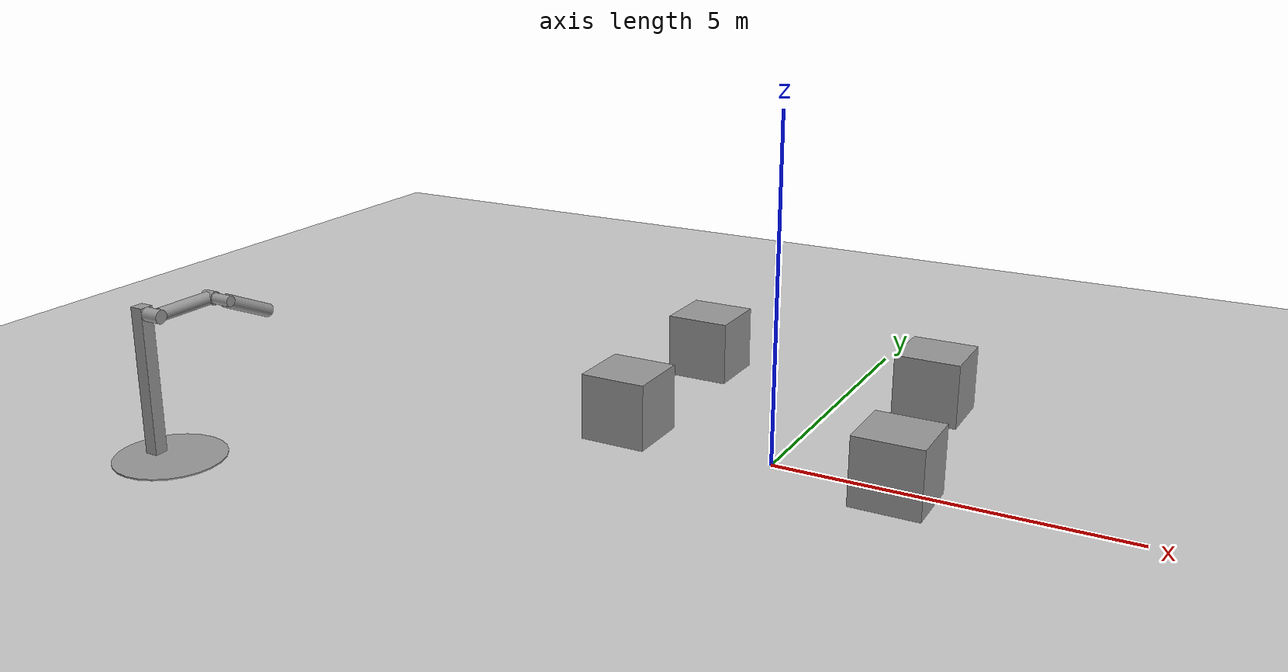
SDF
<sdf version="1.6">
 <world name="default">
  <light name="sun" type="directional">
   <pose>0 0 10 0 -0 0</pose>
   <diffuse>0.8 0.8 0.8 1</diffuse>
   <specular>0.2 0.2 0.2 1</specular>
   <attenuation>
    <range>1000</range>
    <constant>0.9</constant>
    <linear>0.01</linear>
    <quadratic>0.001</quadratic>
   </attenuation>
   <direction>-0.5 0.1 -0.9</direction>
  </light>
  <model name="ground_plane">
   <static>1</static>
   <link name="link">
    <collision name="collision">
     <geometry><plane><normal>0 0 1</normal><size>100 100</size></plane></geometry>
     <surface><friction><ode><mu>100</mu><mu2>50</mu2></ode></friction></surface>
    </collision>
    <visual name="visual">
     <cast_shadows>0</cast_shadows>
     <geometry><plane><normal>0 0 1</normal><size>100 100</size></plane></geometry>
     <material>
      <script><uri>file://media/materials/scripts/gazebo.material</uri><name>Gazebo/Grey</name></script>
     </material>
    </visual>
   </link>
  </model>
  <gravity>0 0 -9.8</gravity>
  <magnetic_field>6e-06 2.3e-05 -4.2e-05</magnetic_field>
  <atmosphere type="adiabatic"/>
  <physics name="default_physics" default="0" type="ode">
   <max_step_size>0.001</max_step_size>
   <real_time_factor>1</real_time_factor>
   <real_time_update_rate>1000</real_time_update_rate>
  </physics>
  <scene><ambient>0.4 0.4 0.4 1</ambient><background>0.7 0.7 0.7 1</background><shadows>1</shadows></scene>
  <audio><device>default</device></audio>
  <spherical_coordinates>
   <surface_model>EARTH_WGS84</surface_model>
   <latitude_deg>0</latitude_deg>
   <longitude_deg>0</longitude_deg>
   <elevation>0</elevation>
   <heading_deg>0</heading_deg>
  </spherical_coordinates>
  <model name="unit_box">
   <pose>-2.40333 3.05697 0.509995 -1e-05 0 0</pose>
   <link name="link">
    <inertial>
     <mass>1</mass>
     <inertia>
      <ixx>0.166667</ixx>
      <ixy>0</ixy>
      <ixz>0</ixz>
      <iyy>0.166667</iyy>
      <iyz>0</iyz>
      <izz>0.166667</izz>
     </inertia>
    </inertial>
    <collision name="collision"><geometry><box><size>1 1 1</size></box></geometry></collision>
    <visual name="visual">
     <geometry><box><size>1 1 1</size></box></geometry>
     <material>
      <script><name>Gazebo/Grey</name><uri>file://media/materials/scripts/gazebo.material</uri></script>
     </material>
    </visual>
   </link>
  </model>
  <model name="unit_box_0">
   <pose>1.40505 3.0013 0.509995 0 1e-05 0</pose>
   <link name="link">
    <inertial>
     <mass>1</mass>
     <inertia>
      <ixx>0.166667</ixx>
      <ixy>0</ixy>
      <ixz>0</ixz>
      <iyy>0.166667</iyy>
      <iyz>0</iyz>
      <izz>0.166667</izz>
     </inertia>
    </inertial>
    <collision name="collision"><geometry><box><size>1 1 1</size></box></geometry></collision>
    <visual name="visual">
     <geometry><box><size>1 1 1</size></box></geometry>
     <material>
      <script><name>Gazebo/Grey</name><uri>file://media/materials/scripts/gazebo.material</uri></script>
     </material>
    </visual>
   </link>
  </model>
  <model name="unit_box_1">
   <pose>-2.28944 0.020053 0.509995 -1e-05 0 0</pose>
   <link name="link">
    <inertial>
     <mass>1</mass>
     <inertia>
      <ixx>0.166667</ixx>
      <ixy>0</ixy>
      <ixz>0</ixz>
      <iyy>0.166667</iyy>
      <iyz>0</iyz>
      <izz>0.166667</izz>
     </inertia>
    </inertial>
    <collision name="collision"><geometry><box><size>1 1 1</size></box></geometry></collision>
    <visual name="visual">
     <geometry><box><size>1 1 1</size></box></geometry>
     <material>
      <script><name>Gazebo/Grey</name><uri>file://media/materials/scripts/gazebo.material</uri></script>
     </material>
    </visual>
   </link>
  </model>
  <model name="unit_box_2">
   <pose>1.868 -0.245709 0.509995 0 1e-05 0</pose>
   <link name="link">
    <inertial>
     <mass>1</mass>
     <inertia>
      <ixx>0.166667</ixx>
      <ixy>0</ixy>
      <ixz>0</ixz>
      <iyy>0.166667</iyy>
      <iyz>0</iyz>
      <izz>0.166667</izz>
     </inertia>
    </inertial>
    <collision name="collision"><geometry><box><size>1 1 1</size></box></geometry></collision>
    <visual name="visual">
     <geometry><box><size>1 1 1</size></box></geometry>
     <material>
      <script><name>Gazebo/Grey</name><uri>file://media/materials/scripts/gazebo.material</uri></script>
     </material>
    </visual>
   </link>
  </model>
  <model name="double_pendulum_with_base">
   <link name="base">
    <inertial>
     <mass>100</mass>
     <inertia><ixx>1</ixx><ixy>0</ixy><ixz>0</ixz><iyy>1</iyy><iyz>0</iyz><izz>1</izz></inertia>
    </inertial>
    <visual name="vis_plate_on_ground">
     <pose>0 0 0.01 0 -0 0</pose>
     <geometry><cylinder><radius>0.8</radius><length>0.02</length></cylinder></geometry>
     <material>
      <script><uri>file://media/materials/scripts/gazebo.material</uri><name>Gazebo/Grey</name></script>
     </material>
    </visual>
    <visual name="vis_pole">
     <pose>-0.275 0 1.1 0 -0 0</pose>
     <geometry><box><size>0.2 0.2 2.2</size></box></geometry>
     <material>
      <script><uri>file://media/materials/scripts/gazebo.material</uri><name>Gazebo/Grey</name></script>
     </material>
    </visual>
    <collision name="col_plate_on_ground">
     <pose>0 0 0.01 0 -0 0</pose>
     <geometry><cylinder><radius>0.8</radius><length>0.02</length></cylinder></geometry>
    </collision>
    <collision name="col_pole">
     <pose>-0.275 0 1.1 0 -0 0</pose>
     <geometry><box><size>0.2 0.2 2.2</size></box></geometry>
    </collision>
   </link>
   <link name="upper_link">
    <pose>0 0 2.1 -1.5708 0 0</pose>
    <inertial>
     <pose>0 0 0.5 0 -0 0</pose>
     <inertia><ixx>1</ixx><ixy>0</ixy><ixz>0</ixz><iyy>1</iyy><iyz>0</iyz><izz>1</izz></inertia>
     <mass>1</mass>
    </inertial>
    <visual name="vis_upper_joint">
     <pose>-0.05 0 0 3.14159 1.57079 3.14159</pose>
     <geometry><cylinder><radius>0.1</radius><length>0.3</length></cylinder></geometry>
     <material>
      <script><uri>file://media/materials/scripts/gazebo.material</uri><name>Gazebo/Grey</name></script>
     </material>
    </visual>
    <visual name="vis_lower_joint">
     <pose>0 0 1 3.14159 1.57079 3.14159</pose>
     <geometry><cylinder><radius>0.1</radius><length>0.2</length></cylinder></geometry>
     <material>
      <script><uri>file://media/materials/scripts/gazebo.material</uri><name>Gazebo/Grey</name></script>
     </material>
    </visual>
    <visual name="vis_cylinder">
     <pose>0 0 0.5 0 -0 0</pose>
     <geometry><cylinder><radius>0.1</radius><length>0.9</length></cylinder></geometry>
     <material>
      <script><uri>file://media/materials/scripts/gazebo.material</uri><name>Gazebo/Grey</name></script>
     </material>
    </visual>
    <collision name="col_upper_joint">
     <pose>-0.05 0 0 3.14159 1.57079 3.14159</pose>
     <geometry><cylinder><radius>0.1</radius><length>0.3</length></cylinder></geometry>
    </collision>
    <collision name="col_lower_joint">
     <pose>0 0 1 3.14159 1.57079 3.14159</pose>
     <geometry><cylinder><radius>0.1</radius><length>0.2</length></cylinder></geometry>
    </collision>
    <collision name="col_cylinder">
     <pose>0 0 0.5 0 -0 0</pose>
     <geometry><cylinder><radius>0.1</radius><length>0.9</length></cylinder></geometry>
    </collision>
   </link>
   <link name="lower_link">
    <pose>0.25 1 2.1 -2 0 0</pose>
    <inertial>
     <pose>0 0 0.5 0 -0 0</pose>
     <inertia><ixx>1</ixx><ixy>0</ixy><ixz>0</ixz><iyy>1</iyy><iyz>0</iyz><izz>1</izz></inertia>
     <mass>1</mass>
    </inertial>
    <visual name="vis_lower_joint">
     <pose>0 0 0 3.14159 1.57079 3.14159</pose>
     <geometry><cylinder><radius>0.08</radius><length>0.3</length></cylinder></geometry>
     <material>
      <script><uri>file://media/materials/scripts/gazebo.material</uri><name>Gazebo/Grey</name></script>
     </material>
    </visual>
    <visual name="vis_cylinder">
     <pose>0 0 0.5 0 -0 0</pose>
     <geometry><cylinder><radius>0.1</radius><length>0.9</length></cylinder></geometry>
     <material>
      <script><uri>file://media/materials/scripts/gazebo.material</uri><name>Gazebo/Grey</name></script>
     </material>
    </visual>
    <collision name="col_lower_joint">
     <pose>0 0 0 3.14159 1.57079 3.14159</pose>
     <geometry><cylinder><radius>0.08</radius><length>0.3</length></cylinder></geometry>
    </collision>
    <collision name="col_cylinder">
     <pose>0 0 0.5 0 -0 0</pose>
     <geometry><cylinder><radius>0.1</radius><length>0.9</length></cylinder></geometry>
    </collision>
   </link>
   <joint name="upper_joint" type="revolute">
    <parent>base</parent>
    <child>upper_link</child>
    <axis>
     <xyz>1 0 0</xyz>
     <use_parent_model_frame>0</use_parent_model_frame>
     <limit><lower>-1e+16</lower><upper>1e+16</upper></limit>
     <dynamics><spring_reference>0</spring_reference><spring_stiffness>0</spring_stiffness></dynamics>
    </axis>
   </joint>
   <joint name="lower_joint" type="revolute">
    <parent>upper_link</parent>
    <child>lower_link</child>
    <axis>
     <xyz>1 0 0</xyz>
     <use_parent_model_frame>0</use_parent_model_frame>
     <limit><lower>-1e+16</lower><upper>1e+16</upper></limit>
     <dynamics><spring_reference>0</spring_reference><spring_stiffness>0</spring_stiffness></dynamics>
    </axis>
   </joint>
   <pose>-7.55063 -3.88857 0.009999 2e-06 8e-06 -0.01481</pose>
  </model>
 </world>
</sdf>
